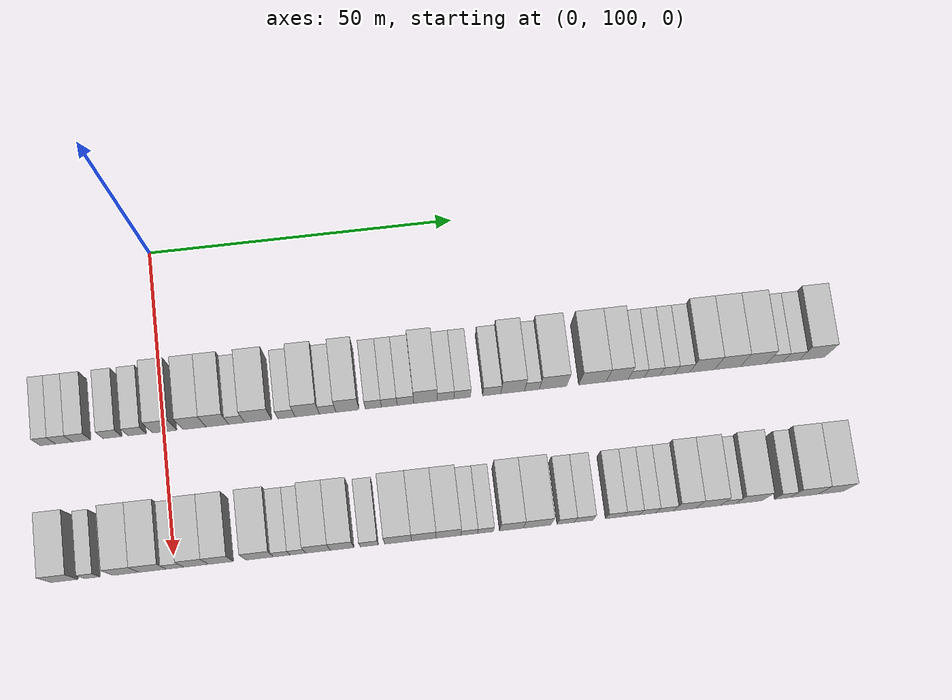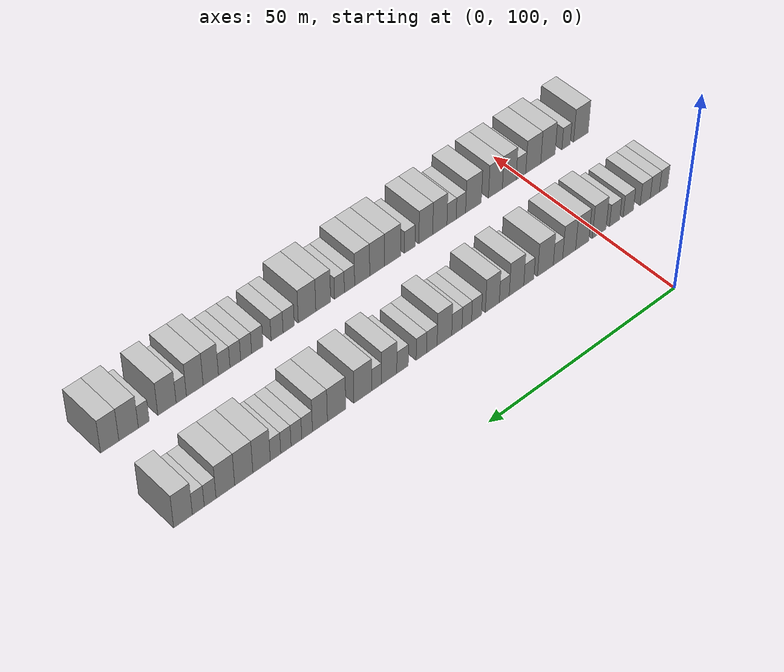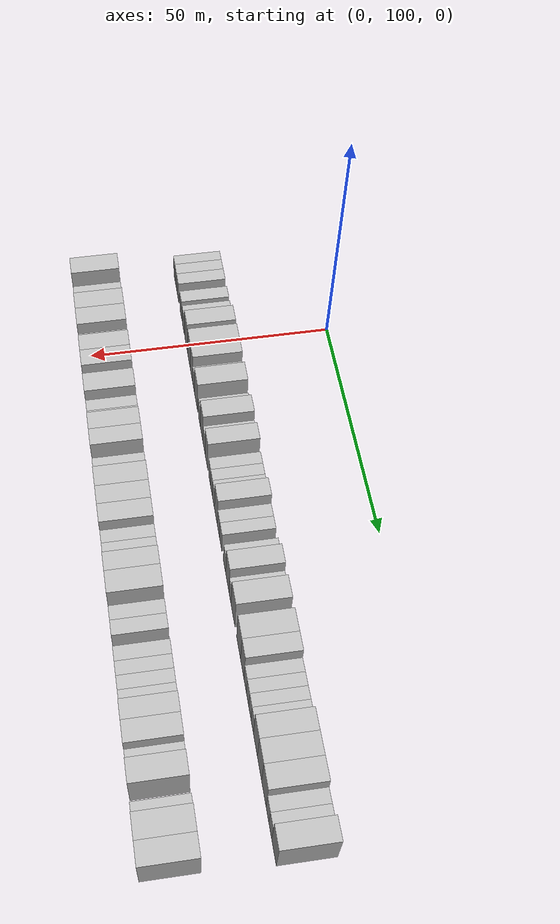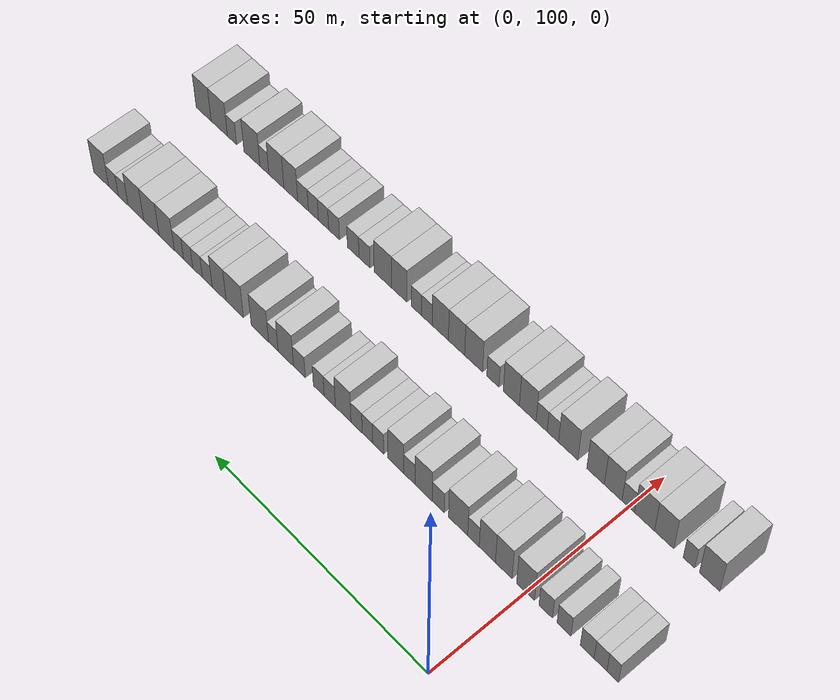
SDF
<sdf version="1.6">
 <world name="default">
  <model name="building_67">
   <static>1</static>
   <pose>25.0000 81.3886 0 0.000000 0.000000 0.000000</pose>
   <link name="link">
    <pose>0 0 3.00 0 0 0</pose>
    <collision name="collision"><geometry><box><size>10.0000 2.4346 6.0000</size></box></geometry></collision>
    <visual name="visual">
     <cast_shadows>0</cast_shadows>
     <geometry><box><size>10.0000 2.4346 6.0000</size></box></geometry>
     <material>
      <script>
       <uri>model://HANNAS_wall/materials/scripts</uri>
       <uri>model://HANNAS_wall/materials/textures</uri>
       <name>vrc/HANNAS_wall</name>
      </script>
     </material>
    </visual>
   </link>
  </model>
  <model name="building_68">
   <static>1</static>
   <pose>25.0000 83.9648 0 0.000000 0.000000 0.000000</pose>
   <link name="link">
    <pose>0 0 3.00 0 0 0</pose>
    <collision name="collision"><geometry><box><size>10.0000 2.7177 6.0000</size></box></geometry></collision>
    <visual name="visual">
     <cast_shadows>0</cast_shadows>
     <geometry><box><size>10.0000 2.7177 6.0000</size></box></geometry>
     <material>
      <script>
       <uri>model://HANNAS_wall/materials/scripts</uri>
       <uri>model://HANNAS_wall/materials/textures</uri>
       <name>vrc/HANNAS_wall</name>
      </script>
     </material>
    </visual>
   </link>
  </model>
  <model name="building_69">
   <static>1</static>
   <pose>25.0000 86.7900 0 0.000000 0.000000 0.000000</pose>
   <link name="link">
    <pose>0 0 3.00 0 0 0</pose>
    <collision name="collision"><geometry><box><size>10.0000 2.9326 6.0000</size></box></geometry></collision>
    <visual name="visual">
     <cast_shadows>0</cast_shadows>
     <geometry><box><size>10.0000 2.9326 6.0000</size></box></geometry>
     <material>
      <script>
       <uri>model://HANNAS_wall/materials/scripts</uri>
       <uri>model://HANNAS_wall/materials/textures</uri>
       <name>vrc/HANNAS_wall</name>
      </script>
     </material>
    </visual>
   </link>
  </model>
  <model name="building_70">
   <static>1</static>
   <pose>25.0000 91.7524 0 0.000000 0.000000 0.000000</pose>
   <link name="link">
    <pose>0 0 3.00 0 0 0</pose>
    <collision name="collision"><geometry><box><size>10.0000 2.9923 6.0000</size></box></geometry></collision>
    <visual name="visual">
     <cast_shadows>0</cast_shadows>
     <geometry><box><size>10.0000 2.9923 6.0000</size></box></geometry>
     <material>
      <script>
       <uri>model://HANNAS_wall/materials/scripts</uri>
       <uri>model://HANNAS_wall/materials/textures</uri>
       <name>vrc/HANNAS_wall</name>
      </script>
     </material>
    </visual>
   </link>
  </model>
  <model name="building_71">
   <static>1</static>
   <pose>25.0000 95.7158 0 0.000000 0.000000 0.000000</pose>
   <link name="link">
    <pose>0 0 3.00 0 0 0</pose>
    <collision name="collision"><geometry><box><size>10.0000 2.9345 6.0000</size></box></geometry></collision>
    <visual name="visual">
     <cast_shadows>0</cast_shadows>
     <geometry><box><size>10.0000 2.9345 6.0000</size></box></geometry>
     <material>
      <script>
       <uri>model://HANNAS_wall/materials/scripts</uri>
       <uri>model://HANNAS_wall/materials/textures</uri>
       <name>vrc/HANNAS_wall</name>
      </script>
     </material>
    </visual>
   </link>
  </model>
  <model name="building_72">
   <static>1</static>
   <pose>25.0000 100.1430 0 0.000000 0.000000 0.000000</pose>
   <link name="link">
    <pose>0 0 4.50 0 0 0</pose>
    <collision name="collision"><geometry><box><size>10.0000 3.9198 9.0000</size></box></geometry></collision>
    <visual name="visual">
     <cast_shadows>0</cast_shadows>
     <geometry><box><size>10.0000 3.9198 9.0000</size></box></geometry>
     <material>
      <script>
       <uri>model://HANNAS_wall/materials/scripts</uri>
       <uri>model://HANNAS_wall/materials/textures</uri>
       <name>vrc/HANNAS_wall</name>
      </script>
     </material>
    </visual>
   </link>
  </model>
  <model name="building_73">
   <static>1</static>
   <pose>25.0000 104.9603 0 0.000000 0.000000 0.000000</pose>
   <link name="link">
    <pose>0 0 4.50 0 0 0</pose>
    <collision name="collision"><geometry><box><size>10.0000 3.7150 9.0000</size></box></geometry></collision>
    <visual name="visual">
     <cast_shadows>0</cast_shadows>
     <geometry><box><size>10.0000 3.7150 9.0000</size></box></geometry>
     <material>
      <script>
       <uri>model://HANNAS_wall/materials/scripts</uri>
       <uri>model://HANNAS_wall/materials/textures</uri>
       <name>vrc/HANNAS_wall</name>
      </script>
     </material>
    </visual>
   </link>
  </model>
  <model name="building_74">
   <static>1</static>
   <pose>25.0000 108.6362 0 0.000000 0.000000 0.000000</pose>
   <link name="link">
    <pose>0 0 4.50 0 0 0</pose>
    <collision name="collision"><geometry><box><size>10.0000 3.6369 9.0000</size></box></geometry></collision>
    <visual name="visual">
     <cast_shadows>0</cast_shadows>
     <geometry><box><size>10.0000 3.6369 9.0000</size></box></geometry>
     <material>
      <script>
       <uri>model://HANNAS_wall/materials/scripts</uri>
       <uri>model://HANNAS_wall/materials/textures</uri>
       <name>vrc/HANNAS_wall</name>
      </script>
     </material>
    </visual>
   </link>
  </model>
  <model name="building_75">
   <static>1</static>
   <pose>25.0000 111.7599 0 0.000000 0.000000 0.000000</pose>
   <link name="link">
    <pose>0 0 3.00 0 0 0</pose>
    <collision name="collision"><geometry><box><size>10.0000 2.6103 6.0000</size></box></geometry></collision>
    <visual name="visual">
     <cast_shadows>0</cast_shadows>
     <geometry><box><size>10.0000 2.6103 6.0000</size></box></geometry>
     <material>
      <script>
       <uri>model://HANNAS_wall/materials/scripts</uri>
       <uri>model://HANNAS_wall/materials/textures</uri>
       <name>vrc/HANNAS_wall</name>
      </script>
     </material>
    </visual>
   </link>
  </model>
  <model name="building_76">
   <static>1</static>
   <pose>25.0000 115.2488 0 0.000000 0.000000 0.000000</pose>
   <link name="link">
    <pose>0 0 4.50 0 0 0</pose>
    <collision name="collision"><geometry><box><size>10.0000 4.3676 9.0000</size></box></geometry></collision>
    <visual name="visual">
     <cast_shadows>0</cast_shadows>
     <geometry><box><size>10.0000 4.3676 9.0000</size></box></geometry>
     <material>
      <script>
       <uri>model://HANNAS_wall/materials/scripts</uri>
       <uri>model://HANNAS_wall/materials/textures</uri>
       <name>vrc/HANNAS_wall</name>
      </script>
     </material>
    </visual>
   </link>
  </model>
  <model name="building_77">
   <static>1</static>
   <pose>25.0000 119.8171 0 0.000000 0.000000 0.000000</pose>
   <link name="link">
    <pose>0 0 3.00 0 0 0</pose>
    <collision name="collision"><geometry><box><size>10.0000 2.7688 6.0000</size></box></geometry></collision>
    <visual name="visual">
     <cast_shadows>0</cast_shadows>
     <geometry><box><size>10.0000 2.7688 6.0000</size></box></geometry>
     <material>
      <script>
       <uri>model://HANNAS_wall/materials/scripts</uri>
       <uri>model://HANNAS_wall/materials/textures</uri>
       <name>vrc/HANNAS_wall</name>
      </script>
     </material>
    </visual>
   </link>
  </model>
  <model name="building_78">
   <static>1</static>
   <pose>25.0000 123.1735 0 0.000000 0.000000 0.000000</pose>
   <link name="link">
    <pose>0 0 4.50 0 0 0</pose>
    <collision name="collision"><geometry><box><size>10.0000 3.9440 9.0000</size></box></geometry></collision>
    <visual name="visual">
     <cast_shadows>0</cast_shadows>
     <geometry><box><size>10.0000 3.9440 9.0000</size></box></geometry>
     <material>
      <script>
       <uri>model://HANNAS_wall/materials/scripts</uri>
       <uri>model://HANNAS_wall/materials/textures</uri>
       <name>vrc/HANNAS_wall</name>
      </script>
     </material>
    </visual>
   </link>
  </model>
  <model name="building_79">
   <static>1</static>
   <pose>25.0000 126.4811 0 0.000000 0.000000 0.000000</pose>
   <link name="link">
    <pose>0 0 3.00 0 0 0</pose>
    <collision name="collision"><geometry><box><size>10.0000 2.6714 6.0000</size></box></geometry></collision>
    <visual name="visual">
     <cast_shadows>0</cast_shadows>
     <geometry><box><size>10.0000 2.6714 6.0000</size></box></geometry>
     <material>
      <script>
       <uri>model://HANNAS_wall/materials/scripts</uri>
       <uri>model://HANNAS_wall/materials/textures</uri>
       <name>vrc/HANNAS_wall</name>
      </script>
     </material>
    </visual>
   </link>
  </model>
  <model name="building_80">
   <static>1</static>
   <pose>25.0000 129.6891 0 0.000000 0.000000 0.000000</pose>
   <link name="link">
    <pose>0 0 4.50 0 0 0</pose>
    <collision name="collision"><geometry><box><size>10.0000 3.7445 9.0000</size></box></geometry></collision>
    <visual name="visual">
     <cast_shadows>0</cast_shadows>
     <geometry><box><size>10.0000 3.7445 9.0000</size></box></geometry>
     <material>
      <script>
       <uri>model://HANNAS_wall/materials/scripts</uri>
       <uri>model://HANNAS_wall/materials/textures</uri>
       <name>vrc/HANNAS_wall</name>
      </script>
     </material>
    </visual>
   </link>
  </model>
  <model name="building_81">
   <static>1</static>
   <pose>25.0000 133.8823 0 0.000000 0.000000 0.000000</pose>
   <link name="link">
    <pose>0 0 3.00 0 0 0</pose>
    <collision name="collision"><geometry><box><size>10.0000 2.6418 6.0000</size></box></geometry></collision>
    <visual name="visual">
     <cast_shadows>0</cast_shadows>
     <geometry><box><size>10.0000 2.6418 6.0000</size></box></geometry>
     <material>
      <script>
       <uri>model://HANNAS_wall/materials/scripts</uri>
       <uri>model://HANNAS_wall/materials/textures</uri>
       <name>vrc/HANNAS_wall</name>
      </script>
     </material>
    </visual>
   </link>
  </model>
  <model name="building_82">
   <static>1</static>
   <pose>25.0000 136.4589 0 0.000000 0.000000 0.000000</pose>
   <link name="link">
    <pose>0 0 3.00 0 0 0</pose>
    <collision name="collision"><geometry><box><size>10.0000 2.5115 6.0000</size></box></geometry></collision>
    <visual name="visual">
     <cast_shadows>0</cast_shadows>
     <geometry><box><size>10.0000 2.5115 6.0000</size></box></geometry>
     <material>
      <script>
       <uri>model://HANNAS_wall/materials/scripts</uri>
       <uri>model://HANNAS_wall/materials/textures</uri>
       <name>vrc/HANNAS_wall</name>
      </script>
     </material>
    </visual>
   </link>
  </model>
  <model name="building_83">
   <static>1</static>
   <pose>25.0000 139.0680 0 0.000000 0.000000 0.000000</pose>
   <link name="link">
    <pose>0 0 3.00 0 0 0</pose>
    <collision name="collision"><geometry><box><size>10.0000 2.7065 6.0000</size></box></geometry></collision>
    <visual name="visual">
     <cast_shadows>0</cast_shadows>
     <geometry><box><size>10.0000 2.7065 6.0000</size></box></geometry>
     <material>
      <script>
       <uri>model://HANNAS_wall/materials/scripts</uri>
       <uri>model://HANNAS_wall/materials/textures</uri>
       <name>vrc/HANNAS_wall</name>
      </script>
     </material>
    </visual>
   </link>
  </model>
  <model name="building_84">
   <static>1</static>
   <pose>25.0000 142.3243 0 0.000000 0.000000 0.000000</pose>
   <link name="link">
    <pose>0 0 4.50 0 0 0</pose>
    <collision name="collision"><geometry><box><size>10.0000 3.8061 9.0000</size></box></geometry></collision>
    <visual name="visual">
     <cast_shadows>0</cast_shadows>
     <geometry><box><size>10.0000 3.8061 9.0000</size></box></geometry>
     <material>
      <script>
       <uri>model://HANNAS_wall/materials/scripts</uri>
       <uri>model://HANNAS_wall/materials/textures</uri>
       <name>vrc/HANNAS_wall</name>
      </script>
     </material>
    </visual>
   </link>
  </model>
  <model name="building_85">
   <static>1</static>
   <pose>25.0000 145.5961 0 0.000000 0.000000 0.000000</pose>
   <link name="link">
    <pose>0 0 3.00 0 0 0</pose>
    <collision name="collision"><geometry><box><size>10.0000 2.7377 6.0000</size></box></geometry></collision>
    <visual name="visual">
     <cast_shadows>0</cast_shadows>
     <geometry><box><size>10.0000 2.7377 6.0000</size></box></geometry>
     <material>
      <script>
       <uri>model://HANNAS_wall/materials/scripts</uri>
       <uri>model://HANNAS_wall/materials/textures</uri>
       <name>vrc/HANNAS_wall</name>
      </script>
     </material>
    </visual>
   </link>
  </model>
  <model name="building_86">
   <static>1</static>
   <pose>25.0000 148.2940 0 0.000000 0.000000 0.000000</pose>
   <link name="link">
    <pose>0 0 3.00 0 0 0</pose>
    <collision name="collision"><geometry><box><size>10.0000 2.6581 6.0000</size></box></geometry></collision>
    <visual name="visual">
     <cast_shadows>0</cast_shadows>
     <geometry><box><size>10.0000 2.6581 6.0000</size></box></geometry>
     <material>
      <script>
       <uri>model://HANNAS_wall/materials/scripts</uri>
       <uri>model://HANNAS_wall/materials/textures</uri>
       <name>vrc/HANNAS_wall</name>
      </script>
     </material>
    </visual>
   </link>
  </model>
  <model name="building_87">
   <static>1</static>
   <pose>25.0000 153.0871 0 0.000000 0.000000 0.000000</pose>
   <link name="link">
    <pose>0 0 3.00 0 0 0</pose>
    <collision name="collision"><geometry><box><size>10.0000 2.9279 6.0000</size></box></geometry></collision>
    <visual name="visual">
     <cast_shadows>0</cast_shadows>
     <geometry><box><size>10.0000 2.9279 6.0000</size></box></geometry>
     <material>
      <script>
       <uri>model://HANNAS_wall/materials/scripts</uri>
       <uri>model://HANNAS_wall/materials/textures</uri>
       <name>vrc/HANNAS_wall</name>
      </script>
     </material>
    </visual>
   </link>
  </model>
  <model name="building_88">
   <static>1</static>
   <pose>25.0000 156.4856 0 0.000000 0.000000 0.000000</pose>
   <link name="link">
    <pose>0 0 4.50 0 0 0</pose>
    <collision name="collision"><geometry><box><size>10.0000 3.8691 9.0000</size></box></geometry></collision>
    <visual name="visual">
     <cast_shadows>0</cast_shadows>
     <geometry><box><size>10.0000 3.8691 9.0000</size></box></geometry>
     <material>
      <script>
       <uri>model://HANNAS_wall/materials/scripts</uri>
       <uri>model://HANNAS_wall/materials/textures</uri>
       <name>vrc/HANNAS_wall</name>
      </script>
     </material>
    </visual>
   </link>
  </model>
  <model name="building_89">
   <static>1</static>
   <pose>25.0000 159.6318 0 0.000000 0.000000 0.000000</pose>
   <link name="link">
    <pose>0 0 3.00 0 0 0</pose>
    <collision name="collision"><geometry><box><size>10.0000 2.4233 6.0000</size></box></geometry></collision>
    <visual name="visual">
     <cast_shadows>0</cast_shadows>
     <geometry><box><size>10.0000 2.4233 6.0000</size></box></geometry>
     <material>
      <script>
       <uri>model://HANNAS_wall/materials/scripts</uri>
       <uri>model://HANNAS_wall/materials/textures</uri>
       <name>vrc/HANNAS_wall</name>
      </script>
     </material>
    </visual>
   </link>
  </model>
  <model name="building_90">
   <static>1</static>
   <pose>25.0000 163.0548 0 0.000000 0.000000 0.000000</pose>
   <link name="link">
    <pose>0 0 4.50 0 0 0</pose>
    <collision name="collision"><geometry><box><size>10.0000 4.4227 9.0000</size></box></geometry></collision>
    <visual name="visual">
     <cast_shadows>0</cast_shadows>
     <geometry><box><size>10.0000 4.4227 9.0000</size></box></geometry>
     <material>
      <script>
       <uri>model://HANNAS_wall/materials/scripts</uri>
       <uri>model://HANNAS_wall/materials/textures</uri>
       <name>vrc/HANNAS_wall</name>
      </script>
     </material>
    </visual>
   </link>
  </model>
  <model name="building_91">
   <static>1</static>
   <pose>25.0000 169.5044 0 0.000000 0.000000 0.000000</pose>
   <link name="link">
    <pose>0 0 4.50 0 0 0</pose>
    <collision name="collision"><geometry><box><size>10.0000 4.4764 9.0000</size></box></geometry></collision>
    <visual name="visual">
     <cast_shadows>0</cast_shadows>
     <geometry><box><size>10.0000 4.4764 9.0000</size></box></geometry>
     <material>
      <script>
       <uri>model://HANNAS_wall/materials/scripts</uri>
       <uri>model://HANNAS_wall/materials/textures</uri>
       <name>vrc/HANNAS_wall</name>
      </script>
     </material>
    </visual>
   </link>
  </model>
  <model name="building_92">
   <static>1</static>
   <pose>25.0000 173.5502 0 0.000000 0.000000 0.000000</pose>
   <link name="link">
    <pose>0 0 4.50 0 0 0</pose>
    <collision name="collision"><geometry><box><size>10.0000 3.6153 9.0000</size></box></geometry></collision>
    <visual name="visual">
     <cast_shadows>0</cast_shadows>
     <geometry><box><size>10.0000 3.6153 9.0000</size></box></geometry>
     <material>
      <script>
       <uri>model://HANNAS_wall/materials/scripts</uri>
       <uri>model://HANNAS_wall/materials/textures</uri>
       <name>vrc/HANNAS_wall</name>
      </script>
     </material>
    </visual>
   </link>
  </model>
  <model name="building_93">
   <static>1</static>
   <pose>25.0000 176.6478 0 0.000000 0.000000 0.000000</pose>
   <link name="link">
    <pose>0 0 3.00 0 0 0</pose>
    <collision name="collision"><geometry><box><size>10.0000 2.5798 6.0000</size></box></geometry></collision>
    <visual name="visual">
     <cast_shadows>0</cast_shadows>
     <geometry><box><size>10.0000 2.5798 6.0000</size></box></geometry>
     <material>
      <script>
       <uri>model://HANNAS_wall/materials/scripts</uri>
       <uri>model://HANNAS_wall/materials/textures</uri>
       <name>vrc/HANNAS_wall</name>
      </script>
     </material>
    </visual>
   </link>
  </model>
  <model name="building_94">
   <static>1</static>
   <pose>25.0000 179.2103 0 0.000000 0.000000 0.000000</pose>
   <link name="link">
    <pose>0 0 3.00 0 0 0</pose>
    <collision name="collision"><geometry><box><size>10.0000 2.5452 6.0000</size></box></geometry></collision>
    <visual name="visual">
     <cast_shadows>0</cast_shadows>
     <geometry><box><size>10.0000 2.5452 6.0000</size></box></geometry>
     <material>
      <script>
       <uri>model://HANNAS_wall/materials/scripts</uri>
       <uri>model://HANNAS_wall/materials/textures</uri>
       <name>vrc/HANNAS_wall</name>
      </script>
     </material>
    </visual>
   </link>
  </model>
  <model name="building_95">
   <static>1</static>
   <pose>25.0000 181.7072 0 0.000000 0.000000 0.000000</pose>
   <link name="link">
    <pose>0 0 3.00 0 0 0</pose>
    <collision name="collision"><geometry><box><size>10.0000 2.4485 6.0000</size></box></geometry></collision>
    <visual name="visual">
     <cast_shadows>0</cast_shadows>
     <geometry><box><size>10.0000 2.4485 6.0000</size></box></geometry>
     <material>
      <script>
       <uri>model://HANNAS_wall/materials/scripts</uri>
       <uri>model://HANNAS_wall/materials/textures</uri>
       <name>vrc/HANNAS_wall</name>
      </script>
     </material>
    </visual>
   </link>
  </model>
  <model name="building_96">
   <static>1</static>
   <pose>25.0000 184.1639 0 0.000000 0.000000 0.000000</pose>
   <link name="link">
    <pose>0 0 3.00 0 0 0</pose>
    <collision name="collision"><geometry><box><size>10.0000 2.4650 6.0000</size></box></geometry></collision>
    <visual name="visual">
     <cast_shadows>0</cast_shadows>
     <geometry><box><size>10.0000 2.4650 6.0000</size></box></geometry>
     <material>
      <script>
       <uri>model://HANNAS_wall/materials/scripts</uri>
       <uri>model://HANNAS_wall/materials/textures</uri>
       <name>vrc/HANNAS_wall</name>
      </script>
     </material>
    </visual>
   </link>
  </model>
  <model name="building_97">
   <static>1</static>
   <pose>25.0000 187.4365 0 0.000000 0.000000 0.000000</pose>
   <link name="link">
    <pose>0 0 4.50 0 0 0</pose>
    <collision name="collision"><geometry><box><size>10.0000 4.0801 9.0000</size></box></geometry></collision>
    <visual name="visual">
     <cast_shadows>0</cast_shadows>
     <geometry><box><size>10.0000 4.0801 9.0000</size></box></geometry>
     <material>
      <script>
       <uri>model://HANNAS_wall/materials/scripts</uri>
       <uri>model://HANNAS_wall/materials/textures</uri>
       <name>vrc/HANNAS_wall</name>
      </script>
     </material>
    </visual>
   </link>
  </model>
  <model name="building_98">
   <static>1</static>
   <pose>25.0000 191.5878 0 0.000000 0.000000 0.000000</pose>
   <link name="link">
    <pose>0 0 4.50 0 0 0</pose>
    <collision name="collision"><geometry><box><size>10.0000 4.2225 9.0000</size></box></geometry></collision>
    <visual name="visual">
     <cast_shadows>0</cast_shadows>
     <geometry><box><size>10.0000 4.2225 9.0000</size></box></geometry>
     <material>
      <script>
       <uri>model://HANNAS_wall/materials/scripts</uri>
       <uri>model://HANNAS_wall/materials/textures</uri>
       <name>vrc/HANNAS_wall</name>
      </script>
     </material>
    </visual>
   </link>
  </model>
  <model name="building_99">
   <static>1</static>
   <pose>25.0000 195.8378 0 0.000000 0.000000 0.000000</pose>
   <link name="link">
    <pose>0 0 4.50 0 0 0</pose>
    <collision name="collision"><geometry><box><size>10.0000 4.2775 9.0000</size></box></geometry></collision>
    <visual name="visual">
     <cast_shadows>0</cast_shadows>
     <geometry><box><size>10.0000 4.2775 9.0000</size></box></geometry>
     <material>
      <script>
       <uri>model://HANNAS_wall/materials/scripts</uri>
       <uri>model://HANNAS_wall/materials/textures</uri>
       <name>vrc/HANNAS_wall</name>
      </script>
     </material>
    </visual>
   </link>
  </model>
  <model name="building_100">
   <static>1</static>
   <pose>25.0000 199.3198 0 0.000000 0.000000 0.000000</pose>
   <link name="link">
    <pose>0 0 3.00 0 0 0</pose>
    <collision name="collision"><geometry><box><size>10.0000 2.6865 6.0000</size></box></geometry></collision>
    <visual name="visual">
     <cast_shadows>0</cast_shadows>
     <geometry><box><size>10.0000 2.6865 6.0000</size></box></geometry>
     <material>
      <script>
       <uri>model://HANNAS_wall/materials/scripts</uri>
       <uri>model://HANNAS_wall/materials/textures</uri>
       <name>vrc/HANNAS_wall</name>
      </script>
     </material>
    </visual>
   </link>
  </model>
  <model name="building_101">
   <static>1</static>
   <pose>25.0000 202.0048 0 0.000000 0.000000 0.000000</pose>
   <link name="link">
    <pose>0 0 3.00 0 0 0</pose>
    <collision name="collision"><geometry><box><size>10.0000 2.6834 6.0000</size></box></geometry></collision>
    <visual name="visual">
     <cast_shadows>0</cast_shadows>
     <geometry><box><size>10.0000 2.6834 6.0000</size></box></geometry>
     <material>
      <script>
       <uri>model://HANNAS_wall/materials/scripts</uri>
       <uri>model://HANNAS_wall/materials/textures</uri>
       <name>vrc/HANNAS_wall</name>
      </script>
     </material>
    </visual>
   </link>
  </model>
  <model name="building_102">
   <static>1</static>
   <pose>25.0000 205.4522 0 0.000000 0.000000 0.000000</pose>
   <link name="link">
    <pose>0 0 4.50 0 0 0</pose>
    <collision name="collision"><geometry><box><size>10.0000 4.2113 9.0000</size></box></geometry></collision>
    <visual name="visual">
     <cast_shadows>0</cast_shadows>
     <geometry><box><size>10.0000 4.2113 9.0000</size></box></geometry>
     <material>
      <script>
       <uri>model://HANNAS_wall/materials/scripts</uri>
       <uri>model://HANNAS_wall/materials/textures</uri>
       <name>vrc/HANNAS_wall</name>
      </script>
     </material>
    </visual>
   </link>
  </model>
  <model name="building_174">
   <static>1</static>
   <pose>47.0000 82.6441 0 0.000000 0.000000 0.000000</pose>
   <link name="link">
    <pose>0 0 4.50 0 0 0</pose>
    <collision name="collision"><geometry><box><size>10.0000 4.3125 9.0000</size></box></geometry></collision>
    <visual name="visual">
     <cast_shadows>0</cast_shadows>
     <geometry><box><size>10.0000 4.3125 9.0000</size></box></geometry>
     <material>
      <script>
       <uri>model://HANNAS_wall/materials/scripts</uri>
       <uri>model://HANNAS_wall/materials/textures</uri>
       <name>vrc/HANNAS_wall</name>
      </script>
     </material>
    </visual>
   </link>
  </model>
  <model name="building_175">
   <static>1</static>
   <pose>47.0000 87.0228 0 0.000000 0.000000 0.000000</pose>
   <link name="link">
    <pose>0 0 3.00 0 0 0</pose>
    <collision name="collision"><geometry><box><size>10.0000 2.4449 6.0000</size></box></geometry></collision>
    <visual name="visual">
     <cast_shadows>0</cast_shadows>
     <geometry><box><size>10.0000 2.4449 6.0000</size></box></geometry>
     <material>
      <script>
       <uri>model://HANNAS_wall/materials/scripts</uri>
       <uri>model://HANNAS_wall/materials/textures</uri>
       <name>vrc/HANNAS_wall</name>
      </script>
     </material>
    </visual>
   </link>
  </model>
  <model name="building_176">
   <static>1</static>
   <pose>47.0000 92.3310 0 0.000000 0.000000 0.000000</pose>
   <link name="link">
    <pose>0 0 4.50 0 0 0</pose>
    <collision name="collision"><geometry><box><size>10.0000 4.1716 9.0000</size></box></geometry></collision>
    <visual name="visual">
     <cast_shadows>0</cast_shadows>
     <geometry><box><size>10.0000 4.1716 9.0000</size></box></geometry>
     <material>
      <script>
       <uri>model://HANNAS_wall/materials/scripts</uri>
       <uri>model://HANNAS_wall/materials/textures</uri>
       <name>vrc/HANNAS_wall</name>
      </script>
     </material>
    </visual>
   </link>
  </model>
  <model name="building_177">
   <static>1</static>
   <pose>47.0000 96.5830 0 0.000000 0.000000 0.000000</pose>
   <link name="link">
    <pose>0 0 4.50 0 0 0</pose>
    <collision name="collision"><geometry><box><size>10.0000 4.3323 9.0000</size></box></geometry></collision>
    <visual name="visual">
     <cast_shadows>0</cast_shadows>
     <geometry><box><size>10.0000 4.3323 9.0000</size></box></geometry>
     <material>
      <script>
       <uri>model://HANNAS_wall/materials/scripts</uri>
       <uri>model://HANNAS_wall/materials/textures</uri>
       <name>vrc/HANNAS_wall</name>
      </script>
     </material>
    </visual>
   </link>
  </model>
  <model name="building_178">
   <static>1</static>
   <pose>47.0000 100.1316 0 0.000000 0.000000 0.000000</pose>
   <link name="link">
    <pose>0 0 3.00 0 0 0</pose>
    <collision name="collision"><geometry><box><size>10.0000 2.7649 6.0000</size></box></geometry></collision>
    <visual name="visual">
     <cast_shadows>0</cast_shadows>
     <geometry><box><size>10.0000 2.7649 6.0000</size></box></geometry>
     <material>
      <script>
       <uri>model://HANNAS_wall/materials/scripts</uri>
       <uri>model://HANNAS_wall/materials/textures</uri>
       <name>vrc/HANNAS_wall</name>
      </script>
     </material>
    </visual>
   </link>
  </model>
  <model name="building_179">
   <static>1</static>
   <pose>47.0000 103.4589 0 0.000000 0.000000 0.000000</pose>
   <link name="link">
    <pose>0 0 4.50 0 0 0</pose>
    <collision name="collision"><geometry><box><size>10.0000 3.8896 9.0000</size></box></geometry></collision>
    <visual name="visual">
     <cast_shadows>0</cast_shadows>
     <geometry><box><size>10.0000 3.8896 9.0000</size></box></geometry>
     <material>
      <script>
       <uri>model://HANNAS_wall/materials/scripts</uri>
       <uri>model://HANNAS_wall/materials/textures</uri>
       <name>vrc/HANNAS_wall</name>
      </script>
     </material>
    </visual>
   </link>
  </model>
  <model name="building_180">
   <static>1</static>
   <pose>47.0000 107.3624 0 0.000000 0.000000 0.000000</pose>
   <link name="link">
    <pose>0 0 4.50 0 0 0</pose>
    <collision name="collision"><geometry><box><size>10.0000 3.9174 9.0000</size></box></geometry></collision>
    <visual name="visual">
     <cast_shadows>0</cast_shadows>
     <geometry><box><size>10.0000 3.9174 9.0000</size></box></geometry>
     <material>
      <script>
       <uri>model://HANNAS_wall/materials/scripts</uri>
       <uri>model://HANNAS_wall/materials/textures</uri>
       <name>vrc/HANNAS_wall</name>
      </script>
     </material>
    </visual>
   </link>
  </model>
  <model name="building_181">
   <static>1</static>
   <pose>47.0000 113.5148 0 0.000000 0.000000 0.000000</pose>
   <link name="link">
    <pose>0 0 4.50 0 0 0</pose>
    <collision name="collision"><geometry><box><size>10.0000 4.3875 9.0000</size></box></geometry></collision>
    <visual name="visual">
     <cast_shadows>0</cast_shadows>
     <geometry><box><size>10.0000 4.3875 9.0000</size></box></geometry>
     <material>
      <script>
       <uri>model://HANNAS_wall/materials/scripts</uri>
       <uri>model://HANNAS_wall/materials/textures</uri>
       <name>vrc/HANNAS_wall</name>
      </script>
     </material>
    </visual>
   </link>
  </model>
  <model name="building_182">
   <static>1</static>
   <pose>47.0000 117.0076 0 0.000000 0.000000 0.000000</pose>
   <link name="link">
    <pose>0 0 3.00 0 0 0</pose>
    <collision name="collision"><geometry><box><size>10.0000 2.5980 6.0000</size></box></geometry></collision>
    <visual name="visual">
     <cast_shadows>0</cast_shadows>
     <geometry><box><size>10.0000 2.5980 6.0000</size></box></geometry>
     <material>
      <script>
       <uri>model://HANNAS_wall/materials/scripts</uri>
       <uri>model://HANNAS_wall/materials/textures</uri>
       <name>vrc/HANNAS_wall</name>
      </script>
     </material>
    </visual>
   </link>
  </model>
  <model name="building_183">
   <static>1</static>
   <pose>47.0000 119.5703 0 0.000000 0.000000 0.000000</pose>
   <link name="link">
    <pose>0 0 3.00 0 0 0</pose>
    <collision name="collision"><geometry><box><size>10.0000 2.5275 6.0000</size></box></geometry></collision>
    <visual name="visual">
     <cast_shadows>0</cast_shadows>
     <geometry><box><size>10.0000 2.5275 6.0000</size></box></geometry>
     <material>
      <script>
       <uri>model://HANNAS_wall/materials/scripts</uri>
       <uri>model://HANNAS_wall/materials/textures</uri>
       <name>vrc/HANNAS_wall</name>
      </script>
     </material>
    </visual>
   </link>
  </model>
  <model name="building_184">
   <static>1</static>
   <pose>47.0000 122.7778 0 0.000000 0.000000 0.000000</pose>
   <link name="link">
    <pose>0 0 4.50 0 0 0</pose>
    <collision name="collision"><geometry><box><size>10.0000 3.8876 9.0000</size></box></geometry></collision>
    <visual name="visual">
     <cast_shadows>0</cast_shadows>
     <geometry><box><size>10.0000 3.8876 9.0000</size></box></geometry>
     <material>
      <script>
       <uri>model://HANNAS_wall/materials/scripts</uri>
       <uri>model://HANNAS_wall/materials/textures</uri>
       <name>vrc/HANNAS_wall</name>
      </script>
     </material>
    </visual>
   </link>
  </model>
  <model name="building_185">
   <static>1</static>
   <pose>47.0000 126.5930 0 0.000000 0.000000 0.000000</pose>
   <link name="link">
    <pose>0 0 4.50 0 0 0</pose>
    <collision name="collision"><geometry><box><size>10.0000 3.7427 9.0000</size></box></geometry></collision>
    <visual name="visual">
     <cast_shadows>0</cast_shadows>
     <geometry><box><size>10.0000 3.7427 9.0000</size></box></geometry>
     <material>
      <script>
       <uri>model://HANNAS_wall/materials/scripts</uri>
       <uri>model://HANNAS_wall/materials/textures</uri>
       <name>vrc/HANNAS_wall</name>
      </script>
     </material>
    </visual>
   </link>
  </model>
  <model name="building_186">
   <static>1</static>
   <pose>47.0000 130.9014 0 0.000000 0.000000 0.000000</pose>
   <link name="link">
    <pose>0 0 3.00 0 0 0</pose>
    <collision name="collision"><geometry><box><size>10.0000 2.8742 6.0000</size></box></geometry></collision>
    <visual name="visual">
     <cast_shadows>0</cast_shadows>
     <geometry><box><size>10.0000 2.8742 6.0000</size></box></geometry>
     <material>
      <script>
       <uri>model://HANNAS_wall/materials/scripts</uri>
       <uri>model://HANNAS_wall/materials/textures</uri>
       <name>vrc/HANNAS_wall</name>
      </script>
     </material>
    </visual>
   </link>
  </model>
  <model name="building_187">
   <static>1</static>
   <pose>47.0000 135.4767 0 0.000000 0.000000 0.000000</pose>
   <link name="link">
    <pose>0 0 4.50 0 0 0</pose>
    <collision name="collision"><geometry><box><size>10.0000 4.2763 9.0000</size></box></geometry></collision>
    <visual name="visual">
     <cast_shadows>0</cast_shadows>
     <geometry><box><size>10.0000 4.2763 9.0000</size></box></geometry>
     <material>
      <script>
       <uri>model://HANNAS_wall/materials/scripts</uri>
       <uri>model://HANNAS_wall/materials/textures</uri>
       <name>vrc/HANNAS_wall</name>
      </script>
     </material>
    </visual>
   </link>
  </model>
  <model name="building_188">
   <static>1</static>
   <pose>47.0000 139.5671 0 0.000000 0.000000 0.000000</pose>
   <link name="link">
    <pose>0 0 4.50 0 0 0</pose>
    <collision name="collision"><geometry><box><size>10.0000 3.9046 9.0000</size></box></geometry></collision>
    <visual name="visual">
     <cast_shadows>0</cast_shadows>
     <geometry><box><size>10.0000 3.9046 9.0000</size></box></geometry>
     <material>
      <script>
       <uri>model://HANNAS_wall/materials/scripts</uri>
       <uri>model://HANNAS_wall/materials/textures</uri>
       <name>vrc/HANNAS_wall</name>
      </script>
     </material>
    </visual>
   </link>
  </model>
  <model name="building_189">
   <static>1</static>
   <pose>47.0000 143.4835 0 0.000000 0.000000 0.000000</pose>
   <link name="link">
    <pose>0 0 4.50 0 0 0</pose>
    <collision name="collision"><geometry><box><size>10.0000 3.9282 9.0000</size></box></geometry></collision>
    <visual name="visual">
     <cast_shadows>0</cast_shadows>
     <geometry><box><size>10.0000 3.9282 9.0000</size></box></geometry>
     <material>
      <script>
       <uri>model://HANNAS_wall/materials/scripts</uri>
       <uri>model://HANNAS_wall/materials/textures</uri>
       <name>vrc/HANNAS_wall</name>
      </script>
     </material>
    </visual>
   </link>
  </model>
  <model name="building_190">
   <static>1</static>
   <pose>47.0000 146.7705 0 0.000000 0.000000 0.000000</pose>
   <link name="link">
    <pose>0 0 3.00 0 0 0</pose>
    <collision name="collision"><geometry><box><size>10.0000 2.6457 6.0000</size></box></geometry></collision>
    <visual name="visual">
     <cast_shadows>0</cast_shadows>
     <geometry><box><size>10.0000 2.6457 6.0000</size></box></geometry>
     <material>
      <script>
       <uri>model://HANNAS_wall/materials/scripts</uri>
       <uri>model://HANNAS_wall/materials/textures</uri>
       <name>vrc/HANNAS_wall</name>
      </script>
     </material>
    </visual>
   </link>
  </model>
  <model name="building_191">
   <static>1</static>
   <pose>47.0000 149.3616 0 0.000000 0.000000 0.000000</pose>
   <link name="link">
    <pose>0 0 3.00 0 0 0</pose>
    <collision name="collision"><geometry><box><size>10.0000 2.5365 6.0000</size></box></geometry></collision>
    <visual name="visual">
     <cast_shadows>0</cast_shadows>
     <geometry><box><size>10.0000 2.5365 6.0000</size></box></geometry>
     <material>
      <script>
       <uri>model://HANNAS_wall/materials/scripts</uri>
       <uri>model://HANNAS_wall/materials/textures</uri>
       <name>vrc/HANNAS_wall</name>
      </script>
     </material>
    </visual>
   </link>
  </model>
  <model name="building_192">
   <static>1</static>
   <pose>47.0000 153.5136 0 0.000000 0.000000 0.000000</pose>
   <link name="link">
    <pose>0 0 4.50 0 0 0</pose>
    <collision name="collision"><geometry><box><size>10.0000 3.7677 9.0000</size></box></geometry></collision>
    <visual name="visual">
     <cast_shadows>0</cast_shadows>
     <geometry><box><size>10.0000 3.7677 9.0000</size></box></geometry>
     <material>
      <script>
       <uri>model://HANNAS_wall/materials/scripts</uri>
       <uri>model://HANNAS_wall/materials/textures</uri>
       <name>vrc/HANNAS_wall</name>
      </script>
     </material>
    </visual>
   </link>
  </model>
  <model name="building_193">
   <static>1</static>
   <pose>47.0000 157.6111 0 0.000000 0.000000 0.000000</pose>
   <link name="link">
    <pose>0 0 4.50 0 0 0</pose>
    <collision name="collision"><geometry><box><size>10.0000 4.4273 9.0000</size></box></geometry></collision>
    <visual name="visual">
     <cast_shadows>0</cast_shadows>
     <geometry><box><size>10.0000 4.4273 9.0000</size></box></geometry>
     <material>
      <script>
       <uri>model://HANNAS_wall/materials/scripts</uri>
       <uri>model://HANNAS_wall/materials/textures</uri>
       <name>vrc/HANNAS_wall</name>
      </script>
     </material>
    </visual>
   </link>
  </model>
  <model name="building_194">
   <static>1</static>
   <pose>47.0000 162.2240 0 0.000000 0.000000 0.000000</pose>
   <link name="link">
    <pose>0 0 3.00 0 0 0</pose>
    <collision name="collision"><geometry><box><size>10.0000 2.7985 6.0000</size></box></geometry></collision>
    <visual name="visual">
     <cast_shadows>0</cast_shadows>
     <geometry><box><size>10.0000 2.7985 6.0000</size></box></geometry>
     <material>
      <script>
       <uri>model://HANNAS_wall/materials/scripts</uri>
       <uri>model://HANNAS_wall/materials/textures</uri>
       <name>vrc/HANNAS_wall</name>
      </script>
     </material>
    </visual>
   </link>
  </model>
  <model name="building_195">
   <static>1</static>
   <pose>47.0000 165.1074 0 0.000000 0.000000 0.000000</pose>
   <link name="link">
    <pose>0 0 3.00 0 0 0</pose>
    <collision name="collision"><geometry><box><size>10.0000 2.9683 6.0000</size></box></geometry></collision>
    <visual name="visual">
     <cast_shadows>0</cast_shadows>
     <geometry><box><size>10.0000 2.9683 6.0000</size></box></geometry>
     <material>
      <script>
       <uri>model://HANNAS_wall/materials/scripts</uri>
       <uri>model://HANNAS_wall/materials/textures</uri>
       <name>vrc/HANNAS_wall</name>
      </script>
     </material>
    </visual>
   </link>
  </model>
  <model name="building_196">
   <static>1</static>
   <pose>47.0000 169.9920 0 0.000000 0.000000 0.000000</pose>
   <link name="link">
    <pose>0 0 3.00 0 0 0</pose>
    <collision name="collision"><geometry><box><size>10.0000 2.8009 6.0000</size></box></geometry></collision>
    <visual name="visual">
     <cast_shadows>0</cast_shadows>
     <geometry><box><size>10.0000 2.8009 6.0000</size></box></geometry>
     <material>
      <script>
       <uri>model://HANNAS_wall/materials/scripts</uri>
       <uri>model://HANNAS_wall/materials/textures</uri>
       <name>vrc/HANNAS_wall</name>
      </script>
     </material>
    </visual>
   </link>
  </model>
  <model name="building_197">
   <static>1</static>
   <pose>47.0000 172.7211 0 0.000000 0.000000 0.000000</pose>
   <link name="link">
    <pose>0 0 3.00 0 0 0</pose>
    <collision name="collision"><geometry><box><size>10.0000 2.6575 6.0000</size></box></geometry></collision>
    <visual name="visual">
     <cast_shadows>0</cast_shadows>
     <geometry><box><size>10.0000 2.6575 6.0000</size></box></geometry>
     <material>
      <script>
       <uri>model://HANNAS_wall/materials/scripts</uri>
       <uri>model://HANNAS_wall/materials/textures</uri>
       <name>vrc/HANNAS_wall</name>
      </script>
     </material>
    </visual>
   </link>
  </model>
  <model name="building_198">
   <static>1</static>
   <pose>47.0000 175.3533 0 0.000000 0.000000 0.000000</pose>
   <link name="link">
    <pose>0 0 3.00 0 0 0</pose>
    <collision name="collision"><geometry><box><size>10.0000 2.6069 6.0000</size></box></geometry></collision>
    <visual name="visual">
     <cast_shadows>0</cast_shadows>
     <geometry><box><size>10.0000 2.6069 6.0000</size></box></geometry>
     <material>
      <script>
       <uri>model://HANNAS_wall/materials/scripts</uri>
       <uri>model://HANNAS_wall/materials/textures</uri>
       <name>vrc/HANNAS_wall</name>
      </script>
     </material>
    </visual>
   </link>
  </model>
  <model name="building_199">
   <static>1</static>
   <pose>47.0000 178.0481 0 0.000000 0.000000 0.000000</pose>
   <link name="link">
    <pose>0 0 3.00 0 0 0</pose>
    <collision name="collision"><geometry><box><size>10.0000 2.7826 6.0000</size></box></geometry></collision>
    <visual name="visual">
     <cast_shadows>0</cast_shadows>
     <geometry><box><size>10.0000 2.7826 6.0000</size></box></geometry>
     <material>
      <script>
       <uri>model://HANNAS_wall/materials/scripts</uri>
       <uri>model://HANNAS_wall/materials/textures</uri>
       <name>vrc/HANNAS_wall</name>
      </script>
     </material>
    </visual>
   </link>
  </model>
  <model name="building_200">
   <static>1</static>
   <pose>47.0000 181.2657 0 0.000000 0.000000 0.000000</pose>
   <link name="link">
    <pose>0 0 4.50 0 0 0</pose>
    <collision name="collision"><geometry><box><size>10.0000 3.6527 9.0000</size></box></geometry></collision>
    <visual name="visual">
     <cast_shadows>0</cast_shadows>
     <geometry><box><size>10.0000 3.6527 9.0000</size></box></geometry>
     <material>
      <script>
       <uri>model://HANNAS_wall/materials/scripts</uri>
       <uri>model://HANNAS_wall/materials/textures</uri>
       <name>vrc/HANNAS_wall</name>
      </script>
     </material>
    </visual>
   </link>
  </model>
  <model name="building_201">
   <static>1</static>
   <pose>47.0000 185.0836 0 0.000000 0.000000 0.000000</pose>
   <link name="link">
    <pose>0 0 4.50 0 0 0</pose>
    <collision name="collision"><geometry><box><size>10.0000 3.9830 9.0000</size></box></geometry></collision>
    <visual name="visual">
     <cast_shadows>0</cast_shadows>
     <geometry><box><size>10.0000 3.9830 9.0000</size></box></geometry>
     <material>
      <script>
       <uri>model://HANNAS_wall/materials/scripts</uri>
       <uri>model://HANNAS_wall/materials/textures</uri>
       <name>vrc/HANNAS_wall</name>
      </script>
     </material>
    </visual>
   </link>
  </model>
  <model name="building_202">
   <static>1</static>
   <pose>47.0000 188.2825 0 0.000000 0.000000 0.000000</pose>
   <link name="link">
    <pose>0 0 3.00 0 0 0</pose>
    <collision name="collision"><geometry><box><size>10.0000 2.4149 6.0000</size></box></geometry></collision>
    <visual name="visual">
     <cast_shadows>0</cast_shadows>
     <geometry><box><size>10.0000 2.4149 6.0000</size></box></geometry>
     <material>
      <script>
       <uri>model://HANNAS_wall/materials/scripts</uri>
       <uri>model://HANNAS_wall/materials/textures</uri>
       <name>vrc/HANNAS_wall</name>
      </script>
     </material>
    </visual>
   </link>
  </model>
  <model name="building_203">
   <static>1</static>
   <pose>47.0000 191.6335 0 0.000000 0.000000 0.000000</pose>
   <link name="link">
    <pose>0 0 4.50 0 0 0</pose>
    <collision name="collision"><geometry><box><size>10.0000 4.2872 9.0000</size></box></geometry></collision>
    <visual name="visual">
     <cast_shadows>0</cast_shadows>
     <geometry><box><size>10.0000 4.2872 9.0000</size></box></geometry>
     <material>
      <script>
       <uri>model://HANNAS_wall/materials/scripts</uri>
       <uri>model://HANNAS_wall/materials/textures</uri>
       <name>vrc/HANNAS_wall</name>
      </script>
     </material>
    </visual>
   </link>
  </model>
  <model name="building_204">
   <static>1</static>
   <pose>47.0000 197.0254 0 0.000000 0.000000 0.000000</pose>
   <link name="link">
    <pose>0 0 3.00 0 0 0</pose>
    <collision name="collision"><geometry><box><size>10.0000 2.4965 6.0000</size></box></geometry></collision>
    <visual name="visual">
     <cast_shadows>0</cast_shadows>
     <geometry><box><size>10.0000 2.4965 6.0000</size></box></geometry>
     <material>
      <script>
       <uri>model://HANNAS_wall/materials/scripts</uri>
       <uri>model://HANNAS_wall/materials/textures</uri>
       <name>vrc/HANNAS_wall</name>
      </script>
     </material>
    </visual>
   </link>
  </model>
  <model name="building_205">
   <static>1</static>
   <pose>47.0000 200.5056 0 0.000000 0.000000 0.000000</pose>
   <link name="link">
    <pose>0 0 4.50 0 0 0</pose>
    <collision name="collision"><geometry><box><size>10.0000 4.4638 9.0000</size></box></geometry></collision>
    <visual name="visual">
     <cast_shadows>0</cast_shadows>
     <geometry><box><size>10.0000 4.4638 9.0000</size></box></geometry>
     <material>
      <script>
       <uri>model://HANNAS_wall/materials/scripts</uri>
       <uri>model://HANNAS_wall/materials/textures</uri>
       <name>vrc/HANNAS_wall</name>
      </script>
     </material>
    </visual>
   </link>
  </model>
  <model name="building_206">
   <static>1</static>
   <pose>47.0000 204.8104 0 0.000000 0.000000 0.000000</pose>
   <link name="link">
    <pose>0 0 4.50 0 0 0</pose>
    <collision name="collision"><geometry><box><size>10.0000 4.1459 9.0000</size></box></geometry></collision>
    <visual name="visual">
     <cast_shadows>0</cast_shadows>
     <geometry><box><size>10.0000 4.1459 9.0000</size></box></geometry>
     <material>
      <script>
       <uri>model://HANNAS_wall/materials/scripts</uri>
       <uri>model://HANNAS_wall/materials/textures</uri>
       <name>vrc/HANNAS_wall</name>
      </script>
     </material>
    </visual>
   </link>
  </model>
 </world>
</sdf>
